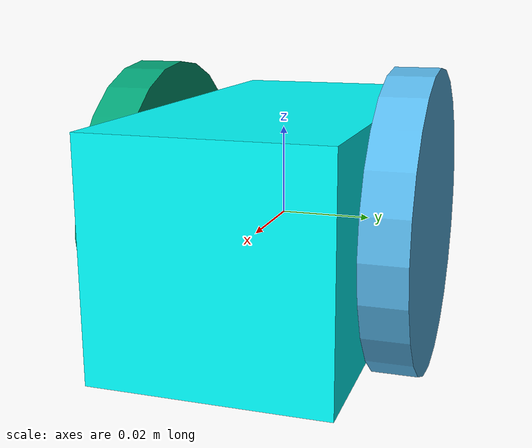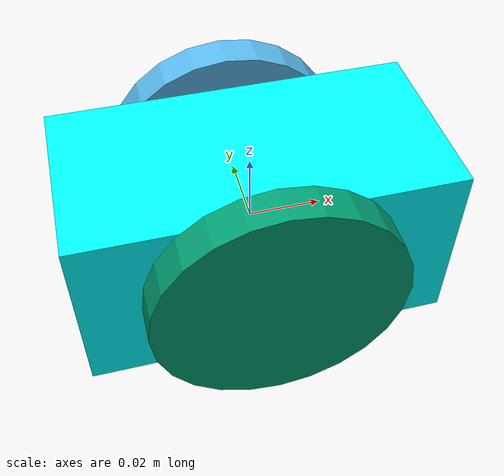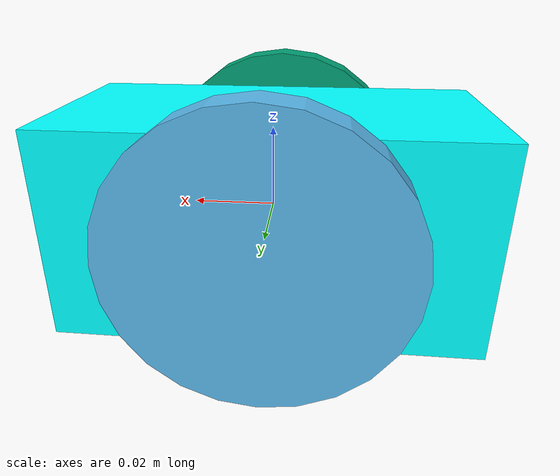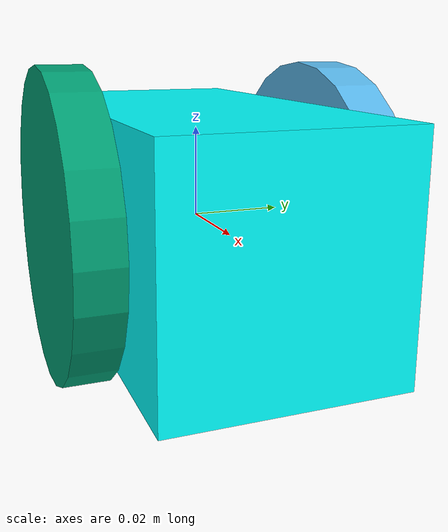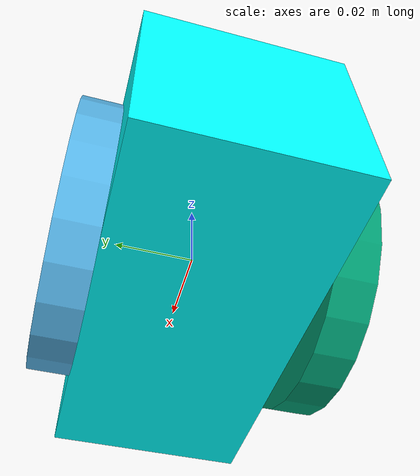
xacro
<?xml version="1.0"?>
<robot xmlns:xacro="http://www.ros.org/wiki/xacro" name="glados">
  <xacro:property name="wheel_separation" value="0.070" />
  <xacro:property name="wheel_radius" value="0.034" />
  <xacro:property name="wheel_width" value="0.010" />
  <xacro:property name="castor_radius" value="0.005" />
  <xacro:property name="body_height" value="0.05" />
  <xacro:property name="body_width" value="0.05" />
  <xacro:property name="body_length" value="0.1" />

  <link name="base_link">
    <visual>
      <origin xyz="0 0 0" rpy="0 0 0" />
      <geometry>
        <box size="${body_length} ${body_width} ${body_height}"/>
      </geometry>
      <material name="Cyan">
        <color rgba="0 1.0 1.0 1.0"/>
      </material>
    </visual>

    <collision>
      <geometry>
        <box size="${body_length} ${body_width} ${body_height}"/>
      </geometry>
    </collision>

    <inertial>
      <mass value="0.18"/>
      <inertia ixx="6.0e-4" ixy="0" ixz="0" iyy="6.0e-4" iyz="0" izz="6.0e-4"/>
    </inertial>
  </link>

  <link name="wheelL">
    <visual>
      <geometry>
        <cylinder length="${wheel_width}" radius="${wheel_radius}"/>
      </geometry>
    </visual>

    <collision>
      <geometry>
        <cylinder length="${wheel_width}" radius="${wheel_radius}"/>
      </geometry>
    </collision>

    <inertial>
      <mass value="0.03"/>
      <inertia ixx="1.75e-5" ixy="0.0" ixz="0.0" iyy="1.75e-5" iyz="0.0" izz="1.75e-5"/>
    </inertial>
  </link>

  <link name="wheelR">
    <visual>
      <geometry>
        <cylinder length="${wheel_width}" radius="${wheel_radius}"/>
      </geometry>
    </visual>

    <collision>
      <geometry>
        <cylinder length="${wheel_width}" radius="${wheel_radius}"/>
      </geometry>
    </collision>

    <inertial>
      <mass value="0.03"/>
      <inertia ixx="1.75e-5" ixy="0.0" ixz="0.0" iyy="1.75e-5" iyz="0.0" izz="1.75e-5"/>
    </inertial>
  </link>

  <joint name="jointL" type="continuous">
    <parent link="base_link"/>
    <child link="wheelL"/>
    <axis xyz="0 0 1"/>
    <origin xyz="0 ${body_width/2 + wheel_width/2} 0" rpy="-1.57 0 0" />
    <dynamics friction="0.1"/>
  </joint>

  <joint name="jointR" type="continuous">
    <parent link="base_link"/>
    <child link="wheelR"/>
    <axis xyz="0 0 1"/>
    <origin xyz="0 -${body_width/2 + wheel_width/2} 0" rpy="-1.57 0 0" />
    <dynamics friction="0.1"/>
  </joint>

</robot>
